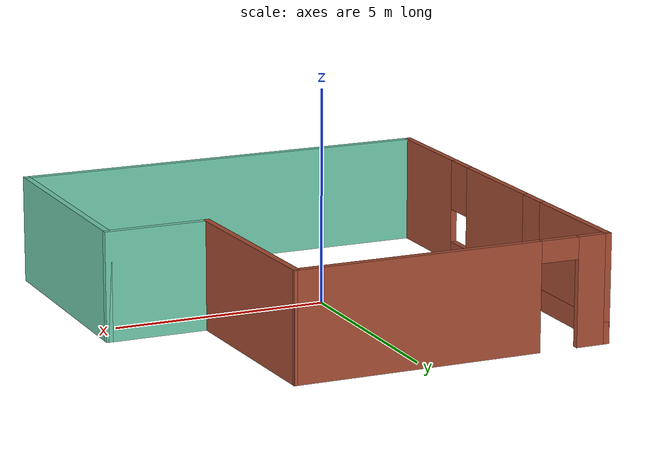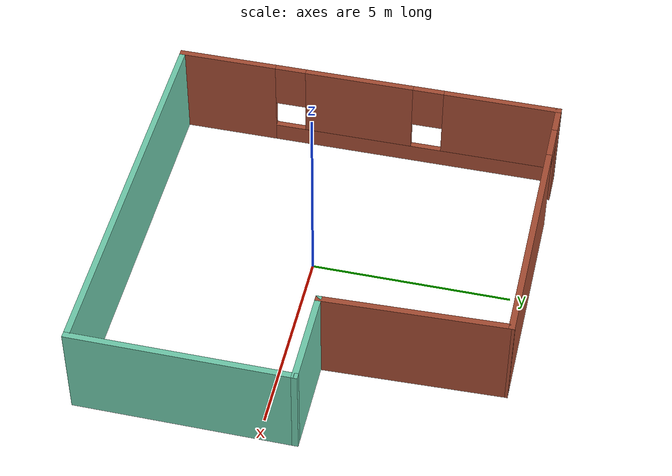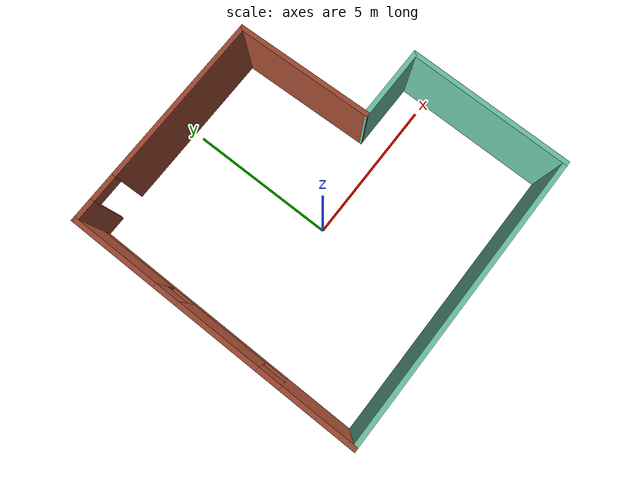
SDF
<?xml version='1.0'?>
<sdf version='1.6'>
  <model name='Building'>
    <pose frame=''>0.565 0.446228 0 0 -0 0</pose>
    <link name='Wall_0'>
      <collision name='Wall_0_Collision'>
        <geometry>
          <box>
            <size>10 0.15 2.5</size>
          </box>
        </geometry>
        <pose frame=''>0 0 1.25 0 -0 0</pose>
      </collision>
      <visual name='Wall_0_Visual'>
        <pose frame=''>0 0 1.25 0 -0 0</pose>
        <geometry>
          <box>
            <size>10 0.15 2.5</size>
          </box>
        </geometry>
        <material>
          <script>
            <uri>file://media/materials/scripts/gazebo.material</uri>
            <name>Gazebo/Grey</name>
          </script>
          <ambient>0.435294 0.796078 0.67451 1</ambient>
        </material>
        <meta>
          <layer>0</layer>
        </meta>
      </visual>
      <pose frame=''>0 -4.92623 0 0 -0 0</pose>
    </link>
    <link name='Wall_2'>
      <collision name='Wall_2_Collision'>
        <geometry>
          <box>
            <size>5.5 0.15 2.5</size>
          </box>
        </geometry>
        <pose frame=''>0 0 1.25 0 -0 0</pose>
      </collision>
      <visual name='Wall_2_Visual'>
        <pose frame=''>0 0 1.25 0 -0 0</pose>
        <geometry>
          <box>
            <size>5.5 0.15 2.5</size>
          </box>
        </geometry>
        <material>
          <script>
            <uri>file://media/materials/scripts/gazebo.material</uri>
            <name>Gazebo/Grey</name>
          </script>
          <ambient>0.435294 0.796078 0.67451 1</ambient>
        </material>
        <meta>
          <layer>0</layer>
        </meta>
      </visual>
      <pose frame=''>4.925 -2.25123 0 0 -0 1.5708</pose>
    </link>
    <link name='Wall_3'>
      <collision name='Wall_3_Collision'>
        <geometry>
          <box>
            <size>2.5 0.15 2.5</size>
          </box>
        </geometry>
        <pose frame=''>0 0 1.25 0 -0 0</pose>
      </collision>
      <visual name='Wall_3_Visual'>
        <pose frame=''>0 0 1.25 0 -0 0</pose>
        <geometry>
          <box>
            <size>2.5 0.15 2.5</size>
          </box>
        </geometry>
        <material>
          <script>
            <uri>file://media/materials/scripts/gazebo.material</uri>
            <name>Gazebo/Grey</name>
          </script>
          <ambient>0.435294 0.796078 0.67451 1</ambient>
        </material>
        <meta>
          <layer>0</layer>
        </meta>
      </visual>
      <pose frame=''>3.75 0.423772 0 0 -0 3.14159</pose>
    </link>
    <link name='Wall_5'>
      <pose frame=''>-4.925 -0.001228 0 0 -0 1.5708</pose>
      <visual name='Wall_5_Visual_0'>
        <pose frame=''>-3.71842 0 1.25 0 -0 0</pose>
        <geometry>
          <box>
            <size>2.56316 0.15 2.5</size>
          </box>
        </geometry>
        <material>
          <script>
            <uri>file://media/materials/scripts/gazebo.material</uri>
            <name>Gazebo/Bricks</name>
          </script>
          <ambient>0.996078 0.47451 0.0196078 1</ambient>
        </material>
        <meta>
          <layer>0</layer>
        </meta>
      </visual>
      <collision name='Wall_5_Collision_0'>
        <geometry>
          <box>
            <size>2.56316 0.15 2.5</size>
          </box>
        </geometry>
        <pose frame=''>-3.71842 0 1.25 0 -0 0</pose>
      </collision>
      <visual name='Wall_5_Visual_1'>
        <pose frame=''>1.28158 0 0.25 0 -0 0</pose>
        <geometry>
          <box>
            <size>7.43684 0.15 0.5</size>
          </box>
        </geometry>
        <material>
          <script>
            <uri>file://media/materials/scripts/gazebo.material</uri>
            <name>Gazebo/Bricks</name>
          </script>
          <ambient>0.996078 0.47451 0.0196078 1</ambient>
        </material>
        <meta>
          <layer>0</layer>
        </meta>
      </visual>
      <collision name='Wall_5_Collision_1'>
        <geometry>
          <box>
            <size>7.43684 0.15 0.5</size>
          </box>
        </geometry>
        <pose frame=''>1.28158 0 0.25 0 -0 0</pose>
      </collision>
      <visual name='Wall_5_Visual_2'>
        <pose frame=''>-0.226452 0 1.5 0 -0 0</pose>
        <geometry>
          <box>
            <size>2.82077 0.15 2</size>
          </box>
        </geometry>
        <material>
          <script>
            <uri>file://media/materials/scripts/gazebo.material</uri>
            <name>Gazebo/Bricks</name>
          </script>
          <ambient>0.996078 0.47451 0.0196078 1</ambient>
        </material>
        <meta>
          <layer>0</layer>
        </meta>
      </visual>
      <collision name='Wall_5_Collision_2'>
        <geometry>
          <box>
            <size>2.82077 0.15 2</size>
          </box>
        </geometry>
        <pose frame=''>-0.226452 0 1.5 0 -0 0</pose>
      </collision>
      <visual name='Wall_5_Visual_3'>
        <pose frame=''>3.49197 0 1.5 0 -0 0</pose>
        <geometry>
          <box>
            <size>3.01607 0.15 2</size>
          </box>
        </geometry>
        <material>
          <script>
            <uri>file://media/materials/scripts/gazebo.material</uri>
            <name>Gazebo/Bricks</name>
          </script>
          <ambient>0.996078 0.47451 0.0196078 1</ambient>
        </material>
        <meta>
          <layer>0</layer>
        </meta>
      </visual>
      <collision name='Wall_5_Collision_3'>
        <geometry>
          <box>
            <size>3.01607 0.15 2</size>
          </box>
        </geometry>
        <pose frame=''>3.49197 0 1.5 0 -0 0</pose>
      </collision>
      <visual name='Wall_5_Visual_4'>
        <pose frame=''>-2.03684 0 1.9 0 -0 0</pose>
        <geometry>
          <box>
            <size>0.8 0.15 1.2</size>
          </box>
        </geometry>
        <material>
          <script>
            <uri>file://media/materials/scripts/gazebo.material</uri>
            <name>Gazebo/Bricks</name>
          </script>
          <ambient>0.996078 0.47451 0.0196078 1</ambient>
        </material>
        <meta>
          <layer>0</layer>
        </meta>
      </visual>
      <collision name='Wall_5_Collision_4'>
        <geometry>
          <box>
            <size>0.8 0.15 1.2</size>
          </box>
        </geometry>
        <pose frame=''>-2.03684 0 1.9 0 -0 0</pose>
      </collision>
      <visual name='Wall_5_Visual_5'>
        <pose frame=''>1.58394 0 1.9 0 -0 0</pose>
        <geometry>
          <box>
            <size>0.8 0.15 1.2</size>
          </box>
        </geometry>
        <material>
          <script>
            <uri>file://media/materials/scripts/gazebo.material</uri>
            <name>Gazebo/Bricks</name>
          </script>
          <ambient>0.996078 0.47451 0.0196078 1</ambient>
        </material>
        <meta>
          <layer>0</layer>
        </meta>
      </visual>
      <collision name='Wall_5_Collision_5'>
        <geometry>
          <box>
            <size>0.8 0.15 1.2</size>
          </box>
        </geometry>
        <pose frame=''>1.58394 0 1.9 0 -0 0</pose>
      </collision>
    </link>
    <link name='Wall_6'>
      <pose frame=''>-1.25 4.92377 0 0 -0 0</pose>
      <visual name='Wall_6_Visual_0'>
        <pose frame=''>-3.34822 0 1.25 0 -0 0</pose>
        <geometry>
          <box>
            <size>0.803553 0.15 2.5</size>
          </box>
        </geometry>
        <material>
          <script>
            <uri>file://media/materials/scripts/gazebo.material</uri>
            <name>Gazebo/Bricks</name>
          </script>
          <ambient>0.996078 0.47451 0.0196078 1</ambient>
        </material>
        <meta>
          <layer>0</layer>
        </meta>
      </visual>
      <collision name='Wall_6_Collision_0'>
        <geometry>
          <box>
            <size>0.803553 0.15 2.5</size>
          </box>
        </geometry>
        <pose frame=''>-3.34822 0 1.25 0 -0 0</pose>
      </collision>
      <visual name='Wall_6_Visual_1'>
        <pose frame=''>0.851777 0 1.25 0 -0 0</pose>
        <geometry>
          <box>
            <size>5.79645 0.15 2.5</size>
          </box>
        </geometry>
        <material>
          <script>
            <uri>file://media/materials/scripts/gazebo.material</uri>
            <name>Gazebo/Bricks</name>
          </script>
          <ambient>0.996078 0.47451 0.0196078 1</ambient>
        </material>
        <meta>
          <layer>0</layer>
        </meta>
      </visual>
      <collision name='Wall_6_Collision_1'>
        <geometry>
          <box>
            <size>5.79645 0.15 2.5</size>
          </box>
        </geometry>
        <pose frame=''>0.851777 0 1.25 0 -0 0</pose>
      </collision>
      <visual name='Wall_6_Visual_2'>
        <pose frame=''>-2.49645 0 2.25 0 -0 0</pose>
        <geometry>
          <box>
            <size>0.9 0.15 0.5</size>
          </box>
        </geometry>
        <material>
          <script>
            <uri>file://media/materials/scripts/gazebo.material</uri>
            <name>Gazebo/Bricks</name>
          </script>
          <ambient>0.996078 0.47451 0.0196078 1</ambient>
        </material>
        <meta>
          <layer>0</layer>
        </meta>
      </visual>
      <collision name='Wall_6_Collision_2'>
        <geometry>
          <box>
            <size>0.9 0.15 0.5</size>
          </box>
        </geometry>
        <pose frame=''>-2.49645 0 2.25 0 -0 0</pose>
      </collision>
    </link>
    <link name='Wall_7'>
      <collision name='Wall_7_Collision'>
        <geometry>
          <box>
            <size>4.6525 0.15 2.5</size>
          </box>
        </geometry>
        <pose frame=''>0 0 1.25 0 -0 0</pose>
      </collision>
      <visual name='Wall_7_Visual'>
        <pose frame=''>0 0 1.25 0 -0 0</pose>
        <geometry>
          <box>
            <size>4.6525 0.15 2.5</size>
          </box>
        </geometry>
        <material>
          <script>
            <uri>file://media/materials/scripts/gazebo.material</uri>
            <name>Gazebo/Bricks</name>
          </script>
          <ambient>0.996078 0.47451 0.0196078 1</ambient>
        </material>
        <meta>
          <layer>0</layer>
        </meta>
      </visual>
      <pose frame=''>2.5 2.67377 0 0 0 -1.53747</pose>
    </link>
    <static>1</static>
  </model>
</sdf>
